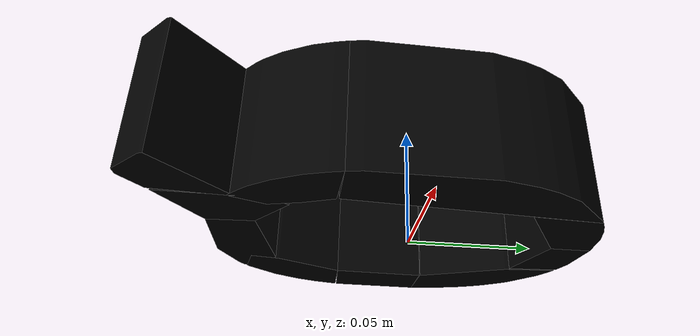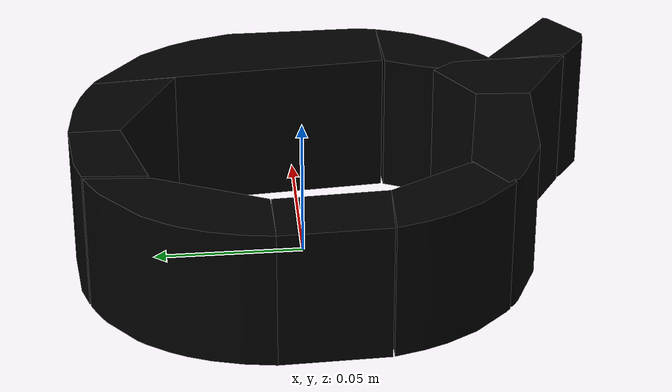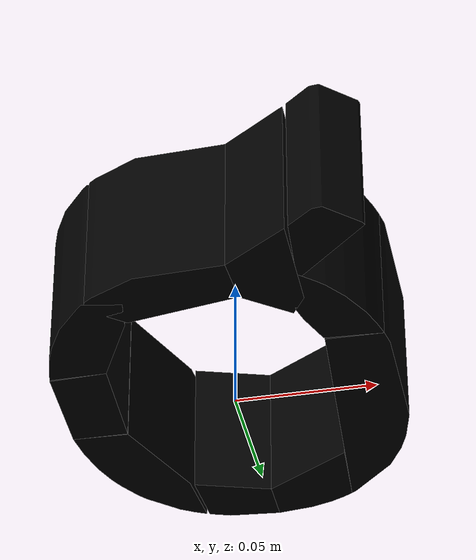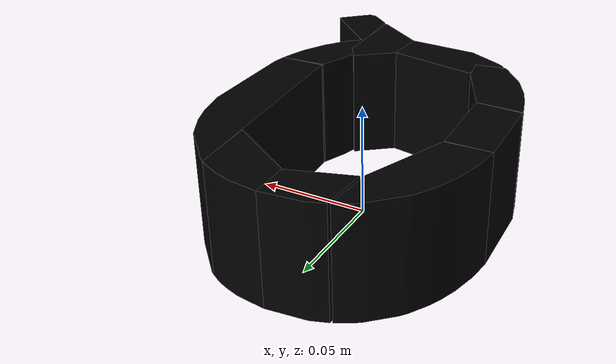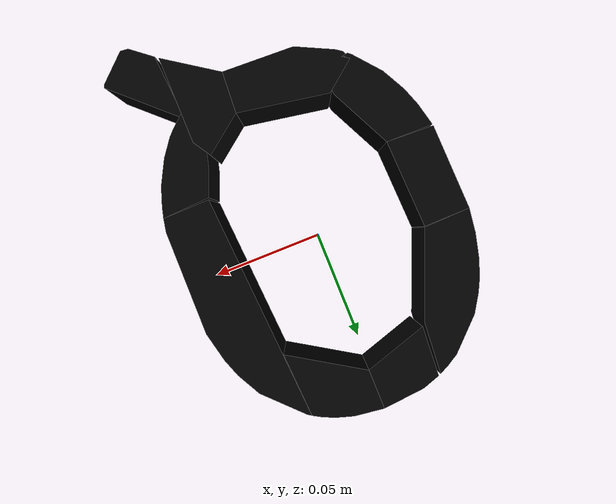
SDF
<?xml version='1.0' encoding='UTF-8'?>
<sdf version="1.7">
  <model name="letter_q">
    <link name="body">
      <inertial>
        <pose>0 0 0 0 0 0</pose>
        <mass>1</mass>
        <inertia>
          <ixx>0.0027941963</ixx>
          <iyy>0.0017740734</iyy>
          <izz>0.004138163</izz>
          <ixy>0.00026030379</ixy>
          <ixz>-3.3228626e-20</ixz>
          <iyz>1.329145e-19</iyz>
        </inertia>
      </inertial>
      <visual name="convex_0">
        <pose>0 0 0 0 0 0</pose>
        <geometry>
          <mesh>
            <uri>letter_q_convex_0.obj</uri>
          </mesh>
        </geometry>
        <material>
          <diffuse>0 0 0 1</diffuse>
        </material>
      </visual>
      <collision name="convex_0_volume">
        <pose>0 0 0 0 0 0</pose>
        <geometry>
          <mesh>
            <uri>letter_q_convex_0.obj</uri>
          </mesh>
        </geometry>
        <drake:proximity_properties xmlns:drake="uri:drake">
          <drake:compliant_hydroelastic/>
          <drake:hydroelastic_modulus> 3.0e7 </drake:hydroelastic_modulus>
          <drake:mesh_resolution_hint> 0.18 </drake:mesh_resolution_hint>
          <drake:hunt_crossley_dissipation>10</drake:hunt_crossley_dissipation>
          <drake:mu_dynamic>0.3</drake:mu_dynamic>
        </drake:proximity_properties>
      </collision>
      <visual name="convex_1">
        <pose>0 0 0 0 0 0</pose>
        <geometry>
          <mesh>
            <uri>letter_q_convex_1.obj</uri>
          </mesh>
        </geometry>
        <material>
          <diffuse>0 0 0 1</diffuse>
        </material>
      </visual>
      <collision name="convex_1_volume">
        <pose>0 0 0 0 0 0</pose>
        <geometry>
          <mesh>
            <uri>letter_q_convex_1.obj</uri>
          </mesh>
        </geometry>
        <drake:proximity_properties xmlns:drake="uri:drake">
          <drake:compliant_hydroelastic/>
          <drake:hydroelastic_modulus> 3.0e7 </drake:hydroelastic_modulus>
          <drake:mesh_resolution_hint> 0.18 </drake:mesh_resolution_hint>
          <drake:hunt_crossley_dissipation>10</drake:hunt_crossley_dissipation>
          <drake:mu_dynamic>0.3</drake:mu_dynamic>
        </drake:proximity_properties>
      </collision>
      <visual name="convex_2">
        <pose>0 0 0 0 0 0</pose>
        <geometry>
          <mesh>
            <uri>letter_q_convex_2.obj</uri>
          </mesh>
        </geometry>
        <material>
          <diffuse>0 0 0 1</diffuse>
        </material>
      </visual>
      <collision name="convex_2_volume">
        <pose>0 0 0 0 0 0</pose>
        <geometry>
          <mesh>
            <uri>letter_q_convex_2.obj</uri>
          </mesh>
        </geometry>
        <drake:proximity_properties xmlns:drake="uri:drake">
          <drake:compliant_hydroelastic/>
          <drake:hydroelastic_modulus> 3.0e7 </drake:hydroelastic_modulus>
          <drake:mesh_resolution_hint> 0.18 </drake:mesh_resolution_hint>
          <drake:hunt_crossley_dissipation>10</drake:hunt_crossley_dissipation>
          <drake:mu_dynamic>0.3</drake:mu_dynamic>
        </drake:proximity_properties>
      </collision>
      <visual name="convex_3">
        <pose>0 0 0 0 0 0</pose>
        <geometry>
          <mesh>
            <uri>letter_q_convex_3.obj</uri>
          </mesh>
        </geometry>
        <material>
          <diffuse>0 0 0 1</diffuse>
        </material>
      </visual>
      <collision name="convex_3_volume">
        <pose>0 0 0 0 0 0</pose>
        <geometry>
          <mesh>
            <uri>letter_q_convex_3.obj</uri>
          </mesh>
        </geometry>
        <drake:proximity_properties xmlns:drake="uri:drake">
          <drake:compliant_hydroelastic/>
          <drake:hydroelastic_modulus> 3.0e7 </drake:hydroelastic_modulus>
          <drake:mesh_resolution_hint> 0.18 </drake:mesh_resolution_hint>
          <drake:hunt_crossley_dissipation>10</drake:hunt_crossley_dissipation>
          <drake:mu_dynamic>0.3</drake:mu_dynamic>
        </drake:proximity_properties>
      </collision>
      <visual name="convex_4">
        <pose>0 0 0 0 0 0</pose>
        <geometry>
          <mesh>
            <uri>letter_q_convex_4.obj</uri>
          </mesh>
        </geometry>
        <material>
          <diffuse>0 0 0 1</diffuse>
        </material>
      </visual>
      <collision name="convex_4_volume">
        <pose>0 0 0 0 0 0</pose>
        <geometry>
          <mesh>
            <uri>letter_q_convex_4.obj</uri>
          </mesh>
        </geometry>
        <drake:proximity_properties xmlns:drake="uri:drake">
          <drake:compliant_hydroelastic/>
          <drake:hydroelastic_modulus> 3.0e7 </drake:hydroelastic_modulus>
          <drake:mesh_resolution_hint> 0.18 </drake:mesh_resolution_hint>
          <drake:hunt_crossley_dissipation>10</drake:hunt_crossley_dissipation>
          <drake:mu_dynamic>0.3</drake:mu_dynamic>
        </drake:proximity_properties>
      </collision>
      <visual name="convex_5">
        <pose>0 0 0 0 0 0</pose>
        <geometry>
          <mesh>
            <uri>letter_q_convex_5.obj</uri>
          </mesh>
        </geometry>
        <material>
          <diffuse>0 0 0 1</diffuse>
        </material>
      </visual>
      <collision name="convex_5_volume">
        <pose>0 0 0 0 0 0</pose>
        <geometry>
          <mesh>
            <uri>letter_q_convex_5.obj</uri>
          </mesh>
        </geometry>
        <drake:proximity_properties xmlns:drake="uri:drake">
          <drake:compliant_hydroelastic/>
          <drake:hydroelastic_modulus> 3.0e7 </drake:hydroelastic_modulus>
          <drake:mesh_resolution_hint> 0.18 </drake:mesh_resolution_hint>
          <drake:hunt_crossley_dissipation>10</drake:hunt_crossley_dissipation>
          <drake:mu_dynamic>0.3</drake:mu_dynamic>
        </drake:proximity_properties>
      </collision>
      <visual name="convex_6">
        <pose>0 0 0 0 0 0</pose>
        <geometry>
          <mesh>
            <uri>letter_q_convex_6.obj</uri>
          </mesh>
        </geometry>
        <material>
          <diffuse>0 0 0 1</diffuse>
        </material>
      </visual>
      <collision name="convex_6_volume">
        <pose>0 0 0 0 0 0</pose>
        <geometry>
          <mesh>
            <uri>letter_q_convex_6.obj</uri>
          </mesh>
        </geometry>
        <drake:proximity_properties xmlns:drake="uri:drake">
          <drake:compliant_hydroelastic/>
          <drake:hydroelastic_modulus> 3.0e7 </drake:hydroelastic_modulus>
          <drake:mesh_resolution_hint> 0.18 </drake:mesh_resolution_hint>
          <drake:hunt_crossley_dissipation>10</drake:hunt_crossley_dissipation>
          <drake:mu_dynamic>0.3</drake:mu_dynamic>
        </drake:proximity_properties>
      </collision>
      <visual name="convex_7">
        <pose>0 0 0 0 0 0</pose>
        <geometry>
          <mesh>
            <uri>letter_q_convex_7.obj</uri>
          </mesh>
        </geometry>
        <material>
          <diffuse>0 0 0 1</diffuse>
        </material>
      </visual>
      <collision name="convex_7_volume">
        <pose>0 0 0 0 0 0</pose>
        <geometry>
          <mesh>
            <uri>letter_q_convex_7.obj</uri>
          </mesh>
        </geometry>
        <drake:proximity_properties xmlns:drake="uri:drake">
          <drake:compliant_hydroelastic/>
          <drake:hydroelastic_modulus> 3.0e7 </drake:hydroelastic_modulus>
          <drake:mesh_resolution_hint> 0.18 </drake:mesh_resolution_hint>
          <drake:hunt_crossley_dissipation>10</drake:hunt_crossley_dissipation>
          <drake:mu_dynamic>0.3</drake:mu_dynamic>
        </drake:proximity_properties>
      </collision>
      <visual name="convex_8">
        <pose>0 0 0 0 0 0</pose>
        <geometry>
          <mesh>
            <uri>letter_q_convex_8.obj</uri>
          </mesh>
        </geometry>
        <material>
          <diffuse>0 0 0 1</diffuse>
        </material>
      </visual>
      <collision name="convex_8_volume">
        <pose>0 0 0 0 0 0</pose>
        <geometry>
          <mesh>
            <uri>letter_q_convex_8.obj</uri>
          </mesh>
        </geometry>
        <drake:proximity_properties xmlns:drake="uri:drake">
          <drake:compliant_hydroelastic/>
          <drake:hydroelastic_modulus> 3.0e7 </drake:hydroelastic_modulus>
          <drake:mesh_resolution_hint> 0.18 </drake:mesh_resolution_hint>
          <drake:hunt_crossley_dissipation>10</drake:hunt_crossley_dissipation>
          <drake:mu_dynamic>0.3</drake:mu_dynamic>
        </drake:proximity_properties>
      </collision>
      <visual name="convex_9">
        <pose>0 0 0 0 0 0</pose>
        <geometry>
          <mesh>
            <uri>letter_q_convex_9.obj</uri>
          </mesh>
        </geometry>
        <material>
          <diffuse>0 0 0 1</diffuse>
        </material>
      </visual>
      <collision name="convex_9_volume">
        <pose>0 0 0 0 0 0</pose>
        <geometry>
          <mesh>
            <uri>letter_q_convex_9.obj</uri>
          </mesh>
        </geometry>
        <drake:proximity_properties xmlns:drake="uri:drake">
          <drake:compliant_hydroelastic/>
          <drake:hydroelastic_modulus> 3.0e7 </drake:hydroelastic_modulus>
          <drake:mesh_resolution_hint> 0.18 </drake:mesh_resolution_hint>
          <drake:hunt_crossley_dissipation>10</drake:hunt_crossley_dissipation>
          <drake:mu_dynamic>0.3</drake:mu_dynamic>
        </drake:proximity_properties>
      </collision>
    </link>
  </model>
</sdf>
